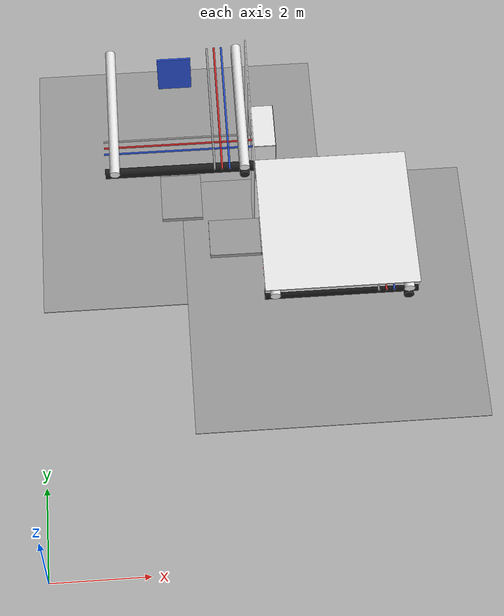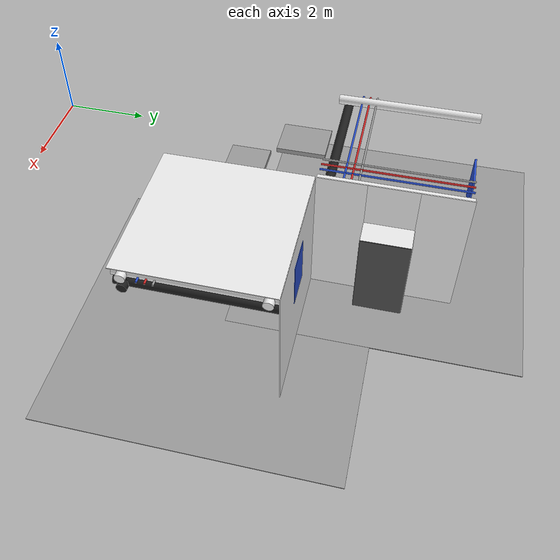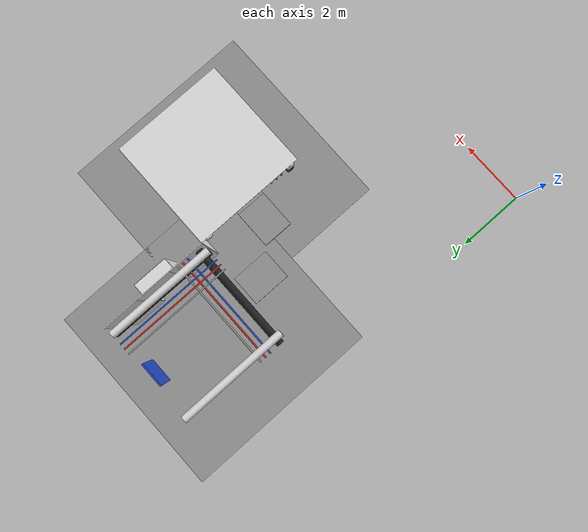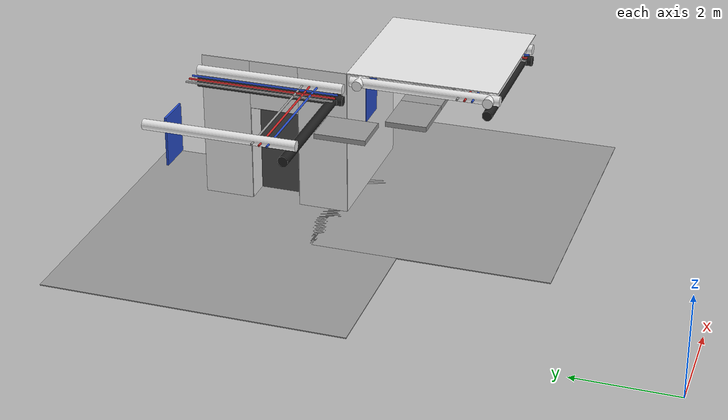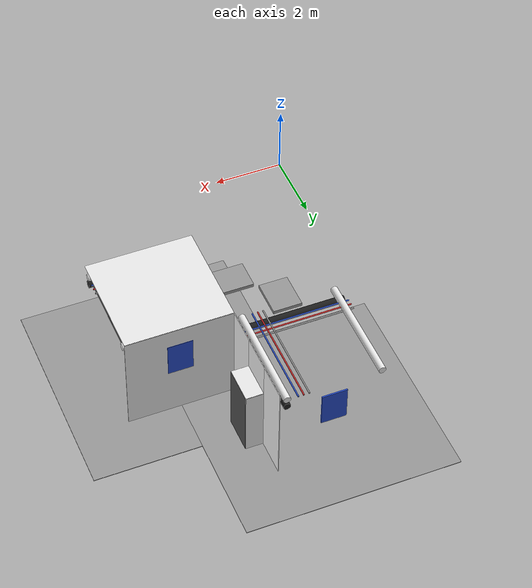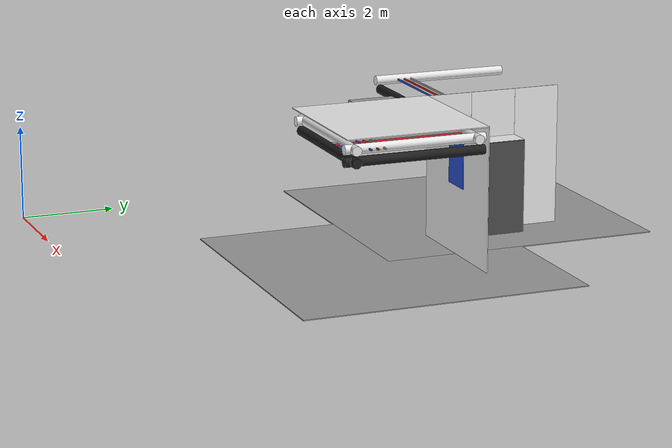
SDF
<sdf version="1.6">
 <world name="default">
  <model name="black_pipe_right_1_3_0_2">
   <static>1</static>
   <pose>3.0 9.0 2.76 0.0 0.0 -1.57</pose>
   <link name="link_0">
    <visual name="visual">
     <pose>1.3 0 -0.25 1.57 0 0</pose>
     <geometry><cylinder><radius>0.1</radius><length>3.0</length></cylinder></geometry>
     <material>
      <script><uri>file://media/materials/scripts/gazebo.material</uri><name>Gazebo/Black</name></script>
     </material>
    </visual>
    <collision name="collision">
     <pose>1.3 0 -0.25 1.57 0 0</pose>
     <geometry><cylinder><radius>0.1</radius><length>3.0</length></cylinder></geometry>
    </collision>
   </link>
  </model>
  <model name="grey_pipe_right_1_3_0_2">
   <static>1</static>
   <pose>3.0 9.0 2.76 0.0 0.0 -1.57</pose>
   <link name="link_0">
    <visual name="visual">
     <pose>0.7 0 0 1.57 0 0</pose>
     <geometry><cylinder><radius>0.02</radius><length>3.0</length></cylinder></geometry>
     <material>
      <script><uri>file://media/materials/scripts/gazebo.material</uri><name>Gazebo/Grey</name></script>
     </material>
    </visual>
    <collision name="collision">
     <pose>0.7 0 0 1.57 0 0</pose>
     <geometry><cylinder><radius>0.02</radius><length>3.0</length></cylinder></geometry>
    </collision>
   </link>
  </model>
  <model name="red_pipe_right_1_3_0_2">
   <static>1</static>
   <pose>3.0 9.0 2.76 0.0 0.0 -1.57</pose>
   <link name="link_0">
    <visual name="visual">
     <pose>0.85 0 0 1.57 0 0</pose>
     <geometry><cylinder><radius>0.02</radius><length>3.0</length></cylinder></geometry>
     <material>
      <script><uri>file://media/materials/scripts/gazebo.material</uri><name>Gazebo/Red</name></script>
     </material>
    </visual>
    <collision name="collision">
     <pose>0.85 0 0 1.57 0 0</pose>
     <geometry><cylinder><radius>0.02</radius><length>3.0</length></cylinder></geometry>
    </collision>
   </link>
  </model>
  <model name="blue_pipe_right_1_3_0_2">
   <static>1</static>
   <pose>3.0 9.0 2.76 0.0 0.0 -1.57</pose>
   <link name="link_0">
    <visual name="visual">
     <pose>1 0 0 1.57 0 0</pose>
     <geometry><cylinder><radius>0.02</radius><length>3.0</length></cylinder></geometry>
     <material>
      <script><uri>file://media/materials/scripts/gazebo.material</uri><name>Gazebo/Blue</name></script>
     </material>
    </visual>
    <collision name="collision">
     <pose>1 0 0 1.57 0 0</pose>
     <geometry><cylinder><radius>0.02</radius><length>3.0</length></cylinder></geometry>
    </collision>
   </link>
  </model>
  <model name="white_pipe_left_1_1_3_0_2">
   <static>1</static>
   <pose>3.0 9.0 2.76 0.0 0.0 0.0</pose>
   <link name="link_0">
    <visual name="visual">
     <pose>-1.3 0 0 1.57 0 0</pose>
     <geometry><cylinder><radius>0.1</radius><length>3.0</length></cylinder></geometry>
     <material>
      <script><uri>file://media/materials/scripts/gazebo.material</uri><name>Gazebo/White</name></script>
     </material>
    </visual>
    <collision name="collision">
     <pose>-1.3 0 0 1.57 0 0</pose>
     <geometry><cylinder><radius>0.1</radius><length>3.0</length></cylinder></geometry>
    </collision>
   </link>
  </model>
  <model name="white_pipe_right_1_1_3_0_2">
   <static>1</static>
   <pose>3.0 9.0 2.76 0.0 0.0 0.0</pose>
   <link name="link_0">
    <visual name="visual">
     <pose>1.3 0 0 1.57 0 0</pose>
     <geometry><cylinder><radius>0.1</radius><length>3.0</length></cylinder></geometry>
     <material>
      <script><uri>file://media/materials/scripts/gazebo.material</uri><name>Gazebo/White</name></script>
     </material>
    </visual>
    <collision name="collision">
     <pose>1.3 0 0 1.57 0 0</pose>
     <geometry><cylinder><radius>0.1</radius><length>3.0</length></cylinder></geometry>
    </collision>
   </link>
  </model>
  <model name="black_pipe_right_1_1_3_0_2">
   <static>1</static>
   <pose>3.0 9.0 2.76 0.0 0.0 0.0</pose>
   <link name="link_0">
    <visual name="visual">
     <pose>1.3 0 -0.25 1.57 0 0</pose>
     <geometry><cylinder><radius>0.1</radius><length>3.0</length></cylinder></geometry>
     <material>
      <script><uri>file://media/materials/scripts/gazebo.material</uri><name>Gazebo/Black</name></script>
     </material>
    </visual>
    <collision name="collision">
     <pose>1.3 0 -0.25 1.57 0 0</pose>
     <geometry><cylinder><radius>0.1</radius><length>3.0</length></cylinder></geometry>
    </collision>
   </link>
  </model>
  <model name="grey_pipe_right_1_1_3_0_2">
   <static>1</static>
   <pose>3.0 9.0 2.76 0.0 0.0 0.0</pose>
   <link name="link_0">
    <visual name="visual">
     <pose>0.7 0 0 1.57 0 0</pose>
     <geometry><cylinder><radius>0.02</radius><length>3.0</length></cylinder></geometry>
     <material>
      <script><uri>file://media/materials/scripts/gazebo.material</uri><name>Gazebo/Grey</name></script>
     </material>
    </visual>
    <collision name="collision">
     <pose>0.7 0 0 1.57 0 0</pose>
     <geometry><cylinder><radius>0.02</radius><length>3.0</length></cylinder></geometry>
    </collision>
   </link>
  </model>
  <model name="red_pipe_right_1_1_3_0_2">
   <static>1</static>
   <pose>3.0 9.0 2.76 0.0 0.0 0.0</pose>
   <link name="link_0">
    <visual name="visual">
     <pose>0.85 0 0 1.57 0 0</pose>
     <geometry><cylinder><radius>0.02</radius><length>3.0</length></cylinder></geometry>
     <material>
      <script><uri>file://media/materials/scripts/gazebo.material</uri><name>Gazebo/Red</name></script>
     </material>
    </visual>
    <collision name="collision">
     <pose>0.85 0 0 1.57 0 0</pose>
     <geometry><cylinder><radius>0.02</radius><length>3.0</length></cylinder></geometry>
    </collision>
   </link>
  </model>
  <model name="blue_pipe_right_1_1_3_0_2">
   <static>1</static>
   <pose>3.0 9.0 2.76 0.0 0.0 0.0</pose>
   <link name="link_0">
    <visual name="visual">
     <pose>1 0 0 1.57 0 0</pose>
     <geometry><cylinder><radius>0.02</radius><length>3.0</length></cylinder></geometry>
     <material>
      <script><uri>file://media/materials/scripts/gazebo.material</uri><name>Gazebo/Blue</name></script>
     </material>
    </visual>
    <collision name="collision">
     <pose>1 0 0 1.57 0 0</pose>
     <geometry><cylinder><radius>0.02</radius><length>3.0</length></cylinder></geometry>
    </collision>
   </link>
  </model>
  <model name="panel_1_3_0_2">
   <static>1</static>
   <pose>3.0 10.5 1.95 0.0 0.0 -1.57</pose>
   <link name="link">
    <collision name="collision"><geometry><box><size>0.04 0.7 1</size></box></geometry></collision>
    <visual name="visual">
     <material>
      <script><name>Gazebo/Blue</name><uri>file://media/materials/scripts/gazebo.material</uri></script>
     </material>
     <geometry><box><size>0.04 0.7 1</size></box></geometry>
    </visual>
   </link>
  </model>
  <model name="wall_front_front_left_1_3_0_2">
   <static>1</static>
   <pose>4.5 8.0 1.5 0.0 0.0 -1.57</pose>
   <link name="link">
    <collision name="collision"><geometry><box><size>1.0 0.02 3.0</size></box></geometry></collision>
    <visual name="visual">
     <material>
      <script><name>Gazebo/White</name><uri>file://media/materials/scripts/gazebo.material</uri></script>
     </material>
     <geometry><box><size>1.0 0.02 3.0</size></box></geometry>
    </visual>
   </link>
  </model>
  <model name="wall_front_front_right_1_3_0_2">
   <static>1</static>
   <pose>4.5 10.0 1.5 0.0 0.0 -1.57</pose>
   <link name="link">
    <collision name="collision"><geometry><box><size>1.0 0.02 3.0</size></box></geometry></collision>
    <visual name="visual">
     <material>
      <script><name>Gazebo/White</name><uri>file://media/materials/scripts/gazebo.material</uri></script>
     </material>
     <geometry><box><size>1.0 0.02 3.0</size></box></geometry>
    </visual>
   </link>
  </model>
  <model name="wall_front_front_up_1_3_0_2">
   <static>1</static>
   <pose>4.5 9.0 2.5 0.0 0.0 -1.57</pose>
   <link name="link">
    <collision name="collision"><geometry><box><size>1.0 0.02 1.0</size></box></geometry></collision>
    <visual name="visual">
     <material>
      <script><name>Gazebo/White</name><uri>file://media/materials/scripts/gazebo.material</uri></script>
     </material>
     <geometry><box><size>1.0 0.02 1.0</size></box></geometry>
    </visual>
   </link>
  </model>
  <model name="wall_front_inside_back_1_3_0_2">
   <static>1</static>
   <pose>5.0 9.0 1.0 0.0 0.0 -1.57</pose>
   <link name="link">
    <collision name="collision"><geometry><box><size>1 0.02 2</size></box></geometry></collision>
    <visual name="visual">
     <material>
      <script><name>Gazebo/DarkGrey</name><uri>file://media/materials/scripts/gazebo.material</uri></script>
     </material>
     <geometry><box><size>1 0.02 2</size></box></geometry>
    </visual>
   </link>
  </model>
  <model name="wall_front_inside_left_1_3_0_2">
   <static>1</static>
   <pose>4.75 9.5 1.0 0.0 0.0 0.0</pose>
   <link name="link">
    <collision name="collision"><geometry><box><size>0.5 0.02 2</size></box></geometry></collision>
    <visual name="visual">
     <material>
      <script><name>Gazebo/White</name><uri>file://media/materials/scripts/gazebo.material</uri></script>
     </material>
     <geometry><box><size>0.5 0.02 2</size></box></geometry>
    </visual>
   </link>
  </model>
  <model name="wall_front_inside_right_1_3_0_2">
   <static>1</static>
   <pose>4.75 8.5 1.0 0.0 0.0 0.0</pose>
   <link name="link">
    <collision name="collision"><geometry><box><size>0.5 0.02 2</size></box></geometry></collision>
    <visual name="visual">
     <material>
      <script><name>Gazebo/White</name><uri>file://media/materials/scripts/gazebo.material</uri></script>
     </material>
     <geometry><box><size>0.5 0.02 2</size></box></geometry>
    </visual>
   </link>
  </model>
  <model name="wall_front_inside_top_1_3_0_2">
   <static>1</static>
   <pose>4.75 9.0 2.0 1.57 0.0 -1.57</pose>
   <link name="link">
    <collision name="collision"><geometry><box><size>1 0.02 0.5</size></box></geometry></collision>
    <visual name="visual">
     <material>
      <script><name>Gazebo/White</name><uri>file://media/materials/scripts/gazebo.material</uri></script>
     </material>
     <geometry><box><size>1 0.02 0.5</size></box></geometry>
    </visual>
   </link>
  </model>
  <model name="wall_bottom_1_3_0_2">
   <static>1</static>
   <pose>3.0 9.0 0.0 0.0 0.0 -1.57</pose>
   <link name="link">
    <collision name="collision"><geometry><box><size>6.0 6.0 0.02</size></box></geometry></collision>
    <visual name="visual">
     <material>
      <script><name>Gazebo/Grey</name><uri>file://media/materials/scripts/gazebo.material</uri></script>
     </material>
     <geometry><box><size>6.0 6.0 0.02</size></box></geometry>
    </visual>
   </link>
  </model>
  <model name="ceiling_1_1_2_0_3">
   <pose>3.0 7.0 2.55 0.0 0.0 3.14</pose>
   <link name="link_1">
    <visual name="visual">
     <geometry><box><size>0.8 1 0.1</size></box></geometry>
     <material>
      <script><uri>file://media/materials/scripts/gazebo.material</uri><name>Gazebo/Grey</name></script>
     </material>
    </visual>
    <collision name="collision"><geometry><box><size>0.8 1 0.1</size></box></geometry></collision>
   </link>
   <static>1</static>
  </model>
  <model name="ceiling_1_1_2_1_3">
   <pose>4.0 6.0 2.55 0.0 0.0 4.71</pose>
   <link name="link_1">
    <visual name="visual">
     <geometry><box><size>0.8 1 0.1</size></box></geometry>
     <material>
      <script><uri>file://media/materials/scripts/gazebo.material</uri><name>Gazebo/Grey</name></script>
     </material>
    </visual>
    <collision name="collision"><geometry><box><size>0.8 1 0.1</size></box></geometry></collision>
   </link>
   <static>1</static>
  </model>
  <model name="wall_left_2_2_0_2">
   <static>1</static>
   <pose>6.0 7.5 1.5 0.0 0.0 0.0</pose>
   <link name="link">
    <collision name="collision"><geometry><box><size>3.0 0.02 3.0</size></box></geometry></collision>
    <visual name="visual">
     <material>
      <script><name>Gazebo/White</name><uri>file://media/materials/scripts/gazebo.material</uri></script>
     </material>
     <geometry><box><size>3.0 0.02 3.0</size></box></geometry>
    </visual>
   </link>
  </model>
  <model name="wall_top_2_2_0_2">
   <static>1</static>
   <pose>6.0 6.0 3.0 1.57 0.0 -1.57</pose>
   <link name="link">
    <collision name="collision"><geometry><box><size>3.0 0.02 3.0</size></box></geometry></collision>
    <visual name="visual">
     <material>
      <script><name>Gazebo/White</name><uri>file://media/materials/scripts/gazebo.material</uri></script>
     </material>
     <geometry><box><size>3.0 0.02 3.0</size></box></geometry>
    </visual>
   </link>
  </model>
  <model name="ceiling_1_2_2_0_2">
   <pose>5.0 6.0 2.55 0.0 0.0 -1.57</pose>
   <link name="link_1">
    <visual name="visual">
     <geometry><box><size>0.8 1 0.1</size></box></geometry>
     <material>
      <script><uri>file://media/materials/scripts/gazebo.material</uri><name>Gazebo/Grey</name></script>
     </material>
    </visual>
    <collision name="collision"><geometry><box><size>0.8 1 0.1</size></box></geometry></collision>
   </link>
   <static>1</static>
  </model>
  <model name="white_pipe_left_2_2_0_2">
   <static>1</static>
   <pose>6.0 6.0 2.76 0.0 0.0 -1.57</pose>
   <link name="link_0">
    <visual name="visual">
     <pose>-1.3 0 0 1.57 0 0</pose>
     <geometry><cylinder><radius>0.1</radius><length>3.0</length></cylinder></geometry>
     <material>
      <script><uri>file://media/materials/scripts/gazebo.material</uri><name>Gazebo/White</name></script>
     </material>
    </visual>
    <collision name="collision">
     <pose>-1.3 0 0 1.57 0 0</pose>
     <geometry><cylinder><radius>0.1</radius><length>3.0</length></cylinder></geometry>
    </collision>
   </link>
  </model>
  <model name="white_pipe_right_2_2_0_2">
   <static>1</static>
   <pose>6.0 6.0 2.76 0.0 0.0 -1.57</pose>
   <link name="link_0">
    <visual name="visual">
     <pose>1.3 0 0 1.57 0 0</pose>
     <geometry><cylinder><radius>0.1</radius><length>3.0</length></cylinder></geometry>
     <material>
      <script><uri>file://media/materials/scripts/gazebo.material</uri><name>Gazebo/White</name></script>
     </material>
    </visual>
    <collision name="collision">
     <pose>1.3 0 0 1.57 0 0</pose>
     <geometry><cylinder><radius>0.1</radius><length>3.0</length></cylinder></geometry>
    </collision>
   </link>
  </model>
  <model name="black_pipe_right_2_2_0_2">
   <static>1</static>
   <pose>6.0 6.0 2.76 0.0 0.0 -1.57</pose>
   <link name="link_0">
    <visual name="visual">
     <pose>1.3 0 -0.25 1.57 0 0</pose>
     <geometry><cylinder><radius>0.1</radius><length>3.0</length></cylinder></geometry>
     <material>
      <script><uri>file://media/materials/scripts/gazebo.material</uri><name>Gazebo/Black</name></script>
     </material>
    </visual>
    <collision name="collision">
     <pose>1.3 0 -0.25 1.57 0 0</pose>
     <geometry><cylinder><radius>0.1</radius><length>3.0</length></cylinder></geometry>
    </collision>
   </link>
  </model>
  <model name="grey_pipe_right_2_2_0_2">
   <static>1</static>
   <pose>6.0 6.0 2.76 0.0 0.0 -1.57</pose>
   <link name="link_0">
    <visual name="visual">
     <pose>0.7 0 0 1.57 0 0</pose>
     <geometry><cylinder><radius>0.02</radius><length>3.0</length></cylinder></geometry>
     <material>
      <script><uri>file://media/materials/scripts/gazebo.material</uri><name>Gazebo/Grey</name></script>
     </material>
    </visual>
    <collision name="collision">
     <pose>0.7 0 0 1.57 0 0</pose>
     <geometry><cylinder><radius>0.02</radius><length>3.0</length></cylinder></geometry>
    </collision>
   </link>
  </model>
  <model name="red_pipe_right_2_2_0_2">
   <static>1</static>
   <pose>6.0 6.0 2.76 0.0 0.0 -1.57</pose>
   <link name="link_0">
    <visual name="visual">
     <pose>0.85 0 0 1.57 0 0</pose>
     <geometry><cylinder><radius>0.02</radius><length>3.0</length></cylinder></geometry>
     <material>
      <script><uri>file://media/materials/scripts/gazebo.material</uri><name>Gazebo/Red</name></script>
     </material>
    </visual>
    <collision name="collision">
     <pose>0.85 0 0 1.57 0 0</pose>
     <geometry><cylinder><radius>0.02</radius><length>3.0</length></cylinder></geometry>
    </collision>
   </link>
  </model>
  <model name="blue_pipe_right_2_2_0_2">
   <static>1</static>
   <pose>6.0 6.0 2.76 0.0 0.0 -1.57</pose>
   <link name="link_0">
    <visual name="visual">
     <pose>1 0 0 1.57 0 0</pose>
     <geometry><cylinder><radius>0.02</radius><length>3.0</length></cylinder></geometry>
     <material>
      <script><uri>file://media/materials/scripts/gazebo.material</uri><name>Gazebo/Blue</name></script>
     </material>
    </visual>
    <collision name="collision">
     <pose>1 0 0 1.57 0 0</pose>
     <geometry><cylinder><radius>0.02</radius><length>3.0</length></cylinder></geometry>
    </collision>
   </link>
  </model>
  <model name="white_pipe_left_1_2_2_0_2">
   <static>1</static>
   <pose>6.0 6.0 2.76 0.0 0.0 0.0</pose>
   <link name="link_0">
    <visual name="visual">
     <pose>-1.3 0 0 1.57 0 0</pose>
     <geometry><cylinder><radius>0.1</radius><length>3.0</length></cylinder></geometry>
     <material>
      <script><uri>file://media/materials/scripts/gazebo.material</uri><name>Gazebo/White</name></script>
     </material>
    </visual>
    <collision name="collision">
     <pose>-1.3 0 0 1.57 0 0</pose>
     <geometry><cylinder><radius>0.1</radius><length>3.0</length></cylinder></geometry>
    </collision>
   </link>
  </model>
  <model name="white_pipe_right_1_2_2_0_2">
   <static>1</static>
   <pose>6.0 6.0 2.76 0.0 0.0 0.0</pose>
   <link name="link_0">
    <visual name="visual">
     <pose>1.3 0 0 1.57 0 0</pose>
     <geometry><cylinder><radius>0.1</radius><length>3.0</length></cylinder></geometry>
     <material>
      <script><uri>file://media/materials/scripts/gazebo.material</uri><name>Gazebo/White</name></script>
     </material>
    </visual>
    <collision name="collision">
     <pose>1.3 0 0 1.57 0 0</pose>
     <geometry><cylinder><radius>0.1</radius><length>3.0</length></cylinder></geometry>
    </collision>
   </link>
  </model>
  <model name="black_pipe_right_1_2_2_0_2">
   <static>1</static>
   <pose>6.0 6.0 2.76 0.0 0.0 0.0</pose>
   <link name="link_0">
    <visual name="visual">
     <pose>1.3 0 -0.25 1.57 0 0</pose>
     <geometry><cylinder><radius>0.1</radius><length>3.0</length></cylinder></geometry>
     <material>
      <script><uri>file://media/materials/scripts/gazebo.material</uri><name>Gazebo/Black</name></script>
     </material>
    </visual>
    <collision name="collision">
     <pose>1.3 0 -0.25 1.57 0 0</pose>
     <geometry><cylinder><radius>0.1</radius><length>3.0</length></cylinder></geometry>
    </collision>
   </link>
  </model>
  <model name="grey_pipe_right_1_2_2_0_2">
   <static>1</static>
   <pose>6.0 6.0 2.76 0.0 0.0 0.0</pose>
   <link name="link_0">
    <visual name="visual">
     <pose>0.7 0 0 1.57 0 0</pose>
     <geometry><cylinder><radius>0.02</radius><length>3.0</length></cylinder></geometry>
     <material>
      <script><uri>file://media/materials/scripts/gazebo.material</uri><name>Gazebo/Grey</name></script>
     </material>
    </visual>
    <collision name="collision">
     <pose>0.7 0 0 1.57 0 0</pose>
     <geometry><cylinder><radius>0.02</radius><length>3.0</length></cylinder></geometry>
    </collision>
   </link>
  </model>
  <model name="red_pipe_right_1_2_2_0_2">
   <static>1</static>
   <pose>6.0 6.0 2.76 0.0 0.0 0.0</pose>
   <link name="link_0">
    <visual name="visual">
     <pose>0.85 0 0 1.57 0 0</pose>
     <geometry><cylinder><radius>0.02</radius><length>3.0</length></cylinder></geometry>
     <material>
      <script><uri>file://media/materials/scripts/gazebo.material</uri><name>Gazebo/Red</name></script>
     </material>
    </visual>
    <collision name="collision">
     <pose>0.85 0 0 1.57 0 0</pose>
     <geometry><cylinder><radius>0.02</radius><length>3.0</length></cylinder></geometry>
    </collision>
   </link>
  </model>
  <model name="blue_pipe_right_1_2_2_0_2">
   <static>1</static>
   <pose>6.0 6.0 2.76 0.0 0.0 0.0</pose>
   <link name="link_0">
    <visual name="visual">
     <pose>1 0 0 1.57 0 0</pose>
     <geometry><cylinder><radius>0.02</radius><length>3.0</length></cylinder></geometry>
     <material>
      <script><uri>file://media/materials/scripts/gazebo.material</uri><name>Gazebo/Blue</name></script>
     </material>
    </visual>
    <collision name="collision">
     <pose>1 0 0 1.57 0 0</pose>
     <geometry><cylinder><radius>0.02</radius><length>3.0</length></cylinder></geometry>
    </collision>
   </link>
  </model>
  <model name="panel_2_2_0_2">
   <static>1</static>
   <pose>6.0 7.5 1.95 0.0 0.0 -1.57</pose>
   <link name="link">
    <collision name="collision"><geometry><box><size>0.04 0.7 1</size></box></geometry></collision>
    <visual name="visual">
     <material>
      <script><name>Gazebo/Blue</name><uri>file://media/materials/scripts/gazebo.material</uri></script>
     </material>
     <geometry><box><size>0.04 0.7 1</size></box></geometry>
    </visual>
   </link>
  </model>
  <model name="wall_bottom_2_2_0_2">
   <static>1</static>
   <pose>6.0 6.0 0.0 0.0 0.0 -1.57</pose>
   <link name="link">
    <collision name="collision"><geometry><box><size>6.0 6.0 0.02</size></box></geometry></collision>
    <visual name="visual">
     <material>
      <script><name>Gazebo/Grey</name><uri>file://media/materials/scripts/gazebo.material</uri></script>
     </material>
     <geometry><box><size>6.0 6.0 0.02</size></box></geometry>
    </visual>
   </link>
  </model>
 </world>
</sdf>
